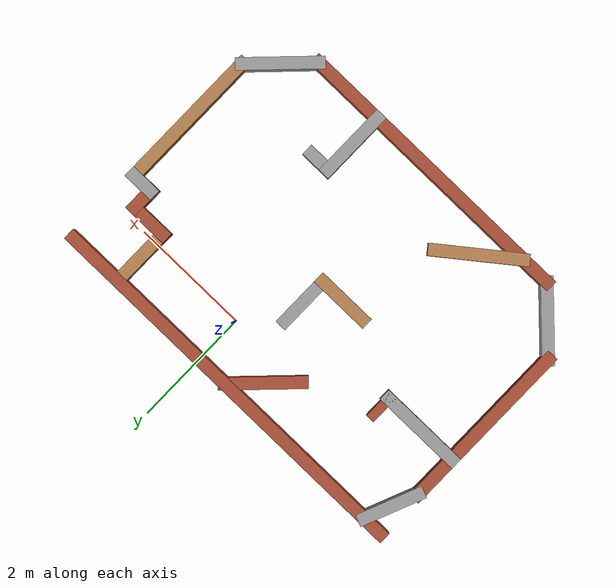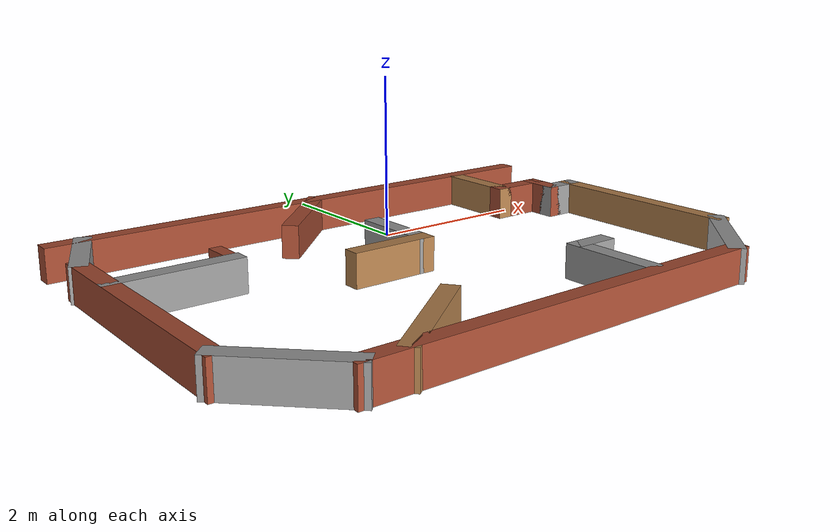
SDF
<?xml version='1.0'?>
<sdf version='1.7'>
  <model name='tie23_4'>
    <pose>-0.6 -1.49 0 0 -0 0</pose>
    <link name='Wall_13'>
      <collision name='Wall_13_Collision'>
        <geometry>
          <box>
            <size>1.11924 0.2 0.4</size>
          </box>
        </geometry>
        <pose>0 0 0.2 0 -0 0</pose>
      </collision>
      <visual name='Wall_13_Visual'>
        <pose>0 0 0.2 0 -0 0</pose>
        <geometry>
          <box>
            <size>1.11924 0.2 0.4</size>
          </box>
        </geometry>
        <material>
          <script>
            <uri>file://media/materials/scripts/gazebo.material</uri>
            <name>Gazebo/Grey</name>
          </script>
          <ambient>1 1 1 1</ambient>
        </material>
        <meta>
          <layer>0</layer>
        </meta>
      </visual>
      <pose>-3.125 1.875 0 0 -0 -1.9614</pose>
    </link>
    <link name='Wall_16'>
      <collision name='Wall_16_Collision'>
        <geometry>
          <box>
            <size>1.55 0.2 0.4</size>
          </box>
        </geometry>
        <pose>0 0 0.2 0 -0 0</pose>
      </collision>
      <visual name='Wall_16_Visual'>
        <pose>0 0 0.2 0 -0 0</pose>
        <geometry>
          <box>
            <size>1.55 0.2 0.4</size>
          </box>
        </geometry>
        <material>
          <script>
            <uri>file://media/materials/scripts/gazebo.material</uri>
            <name>Gazebo/Grey</name>
          </script>
          <ambient>1 1 1 1</ambient>
        </material>
        <meta>
          <layer>0</layer>
        </meta>
      </visual>
      <pose>-2.625 0.7 0 0 -0 0</pose>
    </link>
    <link name='Wall_17'>
      <collision name='Wall_17_Collision'>
        <geometry>
          <box>
            <size>0.5 0.15 0.4</size>
          </box>
        </geometry>
        <pose>0 0 0.2 0 -0 0</pose>
      </collision>
      <visual name='Wall_17_Visual'>
        <pose>0 0 0.2 0 -0 0</pose>
        <geometry>
          <box>
            <size>0.5 0.15 0.4</size>
          </box>
        </geometry>
        <material>
          <script>
            <uri>file://media/materials/scripts/gazebo.material</uri>
            <name>Gazebo/Bricks</name>
          </script>
          <ambient>1 1 1 1</ambient>
        </material>
        <meta>
          <layer>0</layer>
        </meta>
      </visual>
      <pose>-1.95 0.875 0 0 -0 1.5708</pose>
    </link>
    <link name='Wall_2'>
      <collision name='Wall_2_Collision'>
        <geometry>
          <box>
            <size>6.8 0.2 0.4</size>
          </box>
        </geometry>
        <pose>0 0 0.2 0 -0 0</pose>
      </collision>
      <visual name='Wall_2_Visual'>
        <pose>0 0 0.2 0 -0 0</pose>
        <geometry>
          <box>
            <size>6.8 0.2 0.4</size>
          </box>
        </geometry>
        <material>
          <script>
            <uri>file://media/materials/scripts/gazebo.material</uri>
            <name>Gazebo/Bricks</name>
          </script>
          <ambient>1 1 1 1</ambient>
        </material>
        <meta>
          <layer>0</layer>
        </meta>
      </visual>
      <pose>-0 2.3 0 0 -0 3.14159</pose>
    </link>
    <link name='Wall_22'>
      <collision name='Wall_22_Collision'>
        <geometry>
          <box>
            <size>1.40208 0.2 0.4</size>
          </box>
        </geometry>
        <pose>0 0 0.2 0 -0 0</pose>
      </collision>
      <visual name='Wall_22_Visual'>
        <pose>0 0 0.2 0 -0 0</pose>
        <geometry>
          <box>
            <size>1.40208 0.2 0.4</size>
          </box>
        </geometry>
        <material>
          <script>
            <uri>file://media/materials/scripts/gazebo.material</uri>
            <name>Gazebo/Bricks</name>
          </script>
          <ambient>1 1 1 1</ambient>
        </material>
        <meta>
          <layer>0</layer>
        </meta>
      </visual>
      <pose>-0.375 1.875 0 0 -0 0.785398</pose>
    </link>
    <link name='Wall_27'>
      <collision name='Wall_27_Collision'>
        <geometry>
          <box>
            <size>1.59014 0.2 0.4</size>
          </box>
        </geometry>
        <pose>0 0 0.2 0 -0 0</pose>
      </collision>
      <visual name='Wall_27_Visual'>
        <pose>0 0 0.2 0 -0 0</pose>
        <geometry>
          <box>
            <size>1.59014 0.2 0.4</size>
          </box>
        </geometry>
        <material>
          <script>
            <uri>file://media/materials/scripts/gazebo.material</uri>
            <name>Gazebo/Wood</name>
          </script>
          <ambient>1 1 1 1</ambient>
        </material>
        <meta>
          <layer>0</layer>
        </meta>
      </visual>
      <pose>-1.4 -1.875 0 0 -0 -2.4837</pose>
    </link>
    <link name='Wall_32'>
      <collision name='Wall_32_Collision'>
        <geometry>
          <box>
            <size>1.40208 0.2 0.4</size>
          </box>
        </geometry>
        <pose>0 0 0.2 0 -0 0</pose>
      </collision>
      <visual name='Wall_32_Visual'>
        <pose>0 0 0.2 0 -0 0</pose>
        <geometry>
          <box>
            <size>1.40208 0.2 0.4</size>
          </box>
        </geometry>
        <material>
          <script>
            <uri>file://media/materials/scripts/gazebo.material</uri>
            <name>Gazebo/Grey</name>
          </script>
          <ambient>1 1 1 1</ambient>
        </material>
        <meta>
          <layer>0</layer>
        </meta>
      </visual>
      <pose>2.875 -1.875 0 0 -0 -2.35619</pose>
    </link>
    <link name='Wall_35'>
      <collision name='Wall_35_Collision'>
        <geometry>
          <box>
            <size>1.3 0.2 0.4</size>
          </box>
        </geometry>
        <pose>0 0 0.2 0 -0 0</pose>
      </collision>
      <visual name='Wall_35_Visual'>
        <pose>0 0 0.2 0 -0 0</pose>
        <geometry>
          <box>
            <size>1.3 0.2 0.4</size>
          </box>
        </geometry>
        <material>
          <script>
            <uri>file://media/materials/scripts/gazebo.material</uri>
            <name>Gazebo/Grey</name>
          </script>
          <ambient>1 1 1 1</ambient>
        </material>
        <meta>
          <layer>0</layer>
        </meta>
      </visual>
      <pose>1.2 -1.75 0 0 -0 1.5708</pose>
    </link>
    <link name='Wall_36'>
      <collision name='Wall_36_Collision'>
        <geometry>
          <box>
            <size>0.55 0.2 0.4</size>
          </box>
        </geometry>
        <pose>0 0 0.2 0 -0 0</pose>
      </collision>
      <visual name='Wall_36_Visual'>
        <pose>0 0 0.2 0 -0 0</pose>
        <geometry>
          <box>
            <size>0.55 0.2 0.4</size>
          </box>
        </geometry>
        <material>
          <script>
            <uri>file://media/materials/scripts/gazebo.material</uri>
            <name>Gazebo/Grey</name>
          </script>
          <ambient>1 1 1 1</ambient>
        </material>
        <meta>
          <layer>0</layer>
        </meta>
      </visual>
      <pose>1.375 -1.2 0 0 -0 0</pose>
    </link>
    <link name='Wall_41'>
      <collision name='Wall_41_Collision'>
        <geometry>
          <box>
            <size>0.55 0.2 0.4</size>
          </box>
        </geometry>
        <pose>0 0 0.2 0 -0 0</pose>
      </collision>
      <visual name='Wall_41_Visual'>
        <pose>0 0 0.2 0 -0 0</pose>
        <geometry>
          <box>
            <size>0.55 0.2 0.4</size>
          </box>
        </geometry>
        <material>
          <script>
            <uri>file://media/materials/scripts/gazebo.material</uri>
            <name>Gazebo/Grey</name>
          </script>
          <ambient>1 1 1 1</ambient>
        </material>
        <meta>
          <layer>0</layer>
        </meta>
      </visual>
      <pose>3.125 0.95 0 0 -0 3.14159</pose>
    </link>
    <link name='Wall_42'>
      <collision name='Wall_42_Collision'>
        <geometry>
          <box>
            <size>0.55 0.2 0.4</size>
          </box>
        </geometry>
        <pose>0 0 0.2 0 -0 0</pose>
      </collision>
      <visual name='Wall_42_Visual'>
        <pose>0 0 0.2 0 -0 0</pose>
        <geometry>
          <box>
            <size>0.55 0.2 0.4</size>
          </box>
        </geometry>
        <material>
          <script>
            <uri>file://media/materials/scripts/gazebo.material</uri>
            <name>Gazebo/Bricks</name>
          </script>
          <ambient>1 1 1 1</ambient>
        </material>
        <meta>
          <layer>0</layer>
        </meta>
      </visual>
      <pose>2.95 1.125 0 0 -0 1.5708</pose>
    </link>
    <link name='Wall_47'>
      <collision name='Wall_47_Collision'>
        <geometry>
          <box>
            <size>1.05 0.2 0.4</size>
          </box>
        </geometry>
        <pose>0 0 0.2 0 -0 0</pose>
      </collision>
      <visual name='Wall_47_Visual'>
        <pose>0 0 0.2 0 -0 0</pose>
        <geometry>
          <box>
            <size>1.05 0.2 0.4</size>
          </box>
        </geometry>
        <material>
          <script>
            <uri>file://media/materials/scripts/gazebo.material</uri>
            <name>Gazebo/Wood</name>
          </script>
          <ambient>1 1 1 1</ambient>
        </material>
        <meta>
          <layer>0</layer>
        </meta>
      </visual>
      <pose>-0.375 0.1 0 0 -0 0</pose>
    </link>
    <link name='Wall_48'>
      <collision name='Wall_48_Collision'>
        <geometry>
          <box>
            <size>1.05 0.2 0.4</size>
          </box>
        </geometry>
        <pose>0 0 0.2 0 -0 0</pose>
      </collision>
      <visual name='Wall_48_Visual'>
        <pose>0 0 0.2 0 -0 0</pose>
        <geometry>
          <box>
            <size>1.05 0.2 0.4</size>
          </box>
        </geometry>
        <material>
          <script>
            <uri>file://media/materials/scripts/gazebo.material</uri>
            <name>Gazebo/Grey</name>
          </script>
          <ambient>1 1 1 1</ambient>
        </material>
        <meta>
          <layer>0</layer>
        </meta>
      </visual>
      <pose>0.05 0.525 0 0 -0 1.5708</pose>
    </link>
    <link name='Wall_57'>
      <collision name='Wall_57_Collision'>
        <geometry>
          <box>
            <size>2.6 0.2 0.4</size>
          </box>
        </geometry>
        <pose>0 0 0.2 0 -0 0</pose>
      </collision>
      <visual name='Wall_57_Visual'>
        <pose>0 0 0.2 0 -0 0</pose>
        <geometry>
          <box>
            <size>2.6 0.2 0.4</size>
          </box>
        </geometry>
        <material>
          <script>
            <uri>file://media/materials/scripts/gazebo.material</uri>
            <name>Gazebo/Wood</name>
          </script>
          <ambient>1 1 1 1</ambient>
        </material>
        <meta>
          <layer>0</layer>
        </meta>
      </visual>
      <pose>3.3 -0.25 0 0 -0 1.5708</pose>
    </link>
    <link name='Wall_66'>
      <collision name='Wall_66_Collision'>
        <geometry>
          <box>
            <size>0.8 0.2 0.4</size>
          </box>
        </geometry>
        <pose>0 0 0.2 0 -0 0</pose>
      </collision>
      <visual name='Wall_66_Visual'>
        <pose>0 0 0.2 0 -0 0</pose>
        <geometry>
          <box>
            <size>0.8 0.2 0.4</size>
          </box>
        </geometry>
        <material>
          <script>
            <uri>file://media/materials/scripts/gazebo.material</uri>
            <name>Gazebo/Bricks</name>
          </script>
          <ambient>1 1 1 1</ambient>
        </material>
        <meta>
          <layer>0</layer>
        </meta>
      </visual>
      <pose>2.65 1.3 0 0 -0 3.14159</pose>
    </link>
    <link name='Wall_67'>
      <collision name='Wall_67_Collision'>
        <geometry>
          <box>
            <size>1.05 0.2 0.4</size>
          </box>
        </geometry>
        <pose>0 0 0.2 0 -0 0</pose>
      </collision>
      <visual name='Wall_67_Visual'>
        <pose>0 0 0.2 0 -0 0</pose>
        <geometry>
          <box>
            <size>1.05 0.2 0.4</size>
          </box>
        </geometry>
        <material>
          <script>
            <uri>file://media/materials/scripts/gazebo.material</uri>
            <name>Gazebo/Wood</name>
          </script>
          <ambient>1 1 1 1</ambient>
        </material>
        <meta>
          <layer>0</layer>
        </meta>
      </visual>
      <pose>2.35 1.725 0 0 -0 1.5708</pose>
    </link>
    <link name='Wall_69'>
      <collision name='Wall_69_Collision'>
        <geometry>
          <box>
            <size>5.1 0.2 0.4</size>
          </box>
        </geometry>
        <pose>0 0 0.2 0 -0 0</pose>
      </collision>
      <visual name='Wall_69_Visual'>
        <pose>0 0 0.2 0 -0 0</pose>
        <geometry>
          <box>
            <size>5.1 0.2 0.4</size>
          </box>
        </geometry>
        <material>
          <script>
            <uri>file://media/materials/scripts/gazebo.material</uri>
            <name>Gazebo/Bricks</name>
          </script>
          <ambient>1 1 1 1</ambient>
        </material>
        <meta>
          <layer>0</layer>
        </meta>
      </visual>
      <pose>-0 -2.3 0 0 -0 3.14159</pose>
    </link>
    <link name='Wall_73'>
      <collision name='Wall_73_Collision'>
        <geometry>
          <box>
            <size>3.1 0.2 0.4</size>
          </box>
        </geometry>
        <pose>0 0 0.2 0 -0 0</pose>
      </collision>
      <visual name='Wall_73_Visual'>
        <pose>0 0 0.2 0 -0 0</pose>
        <geometry>
          <box>
            <size>3.1 0.2 0.4</size>
          </box>
        </geometry>
        <material>
          <script>
            <uri>file://media/materials/scripts/gazebo.material</uri>
            <name>Gazebo/Bricks</name>
          </script>
          <ambient>1 1 1 1</ambient>
        </material>
        <meta>
          <layer>0</layer>
        </meta>
      </visual>
      <pose>-3.3 0 0 0 -0 1.5708</pose>
    </link>
    <link name='Wall_8'>
      <collision name='Wall_8_Collision'>
        <geometry>
          <box>
            <size>1.40208 0.2 0.4</size>
          </box>
        </geometry>
        <pose>0 0 0.2 0 -0 0</pose>
      </collision>
      <visual name='Wall_8_Visual'>
        <pose>0 0 0.2 0 -0 0</pose>
        <geometry>
          <box>
            <size>1.40208 0.2 0.4</size>
          </box>
        </geometry>
        <material>
          <script>
            <uri>file://media/materials/scripts/gazebo.material</uri>
            <name>Gazebo/Grey</name>
          </script>
          <ambient>1 1 1 1</ambient>
        </material>
        <meta>
          <layer>0</layer>
        </meta>
      </visual>
      <pose>-2.875 -1.875 0 0 -0 2.35619</pose>
    </link>
    <static>1</static>
  </model>
</sdf>
